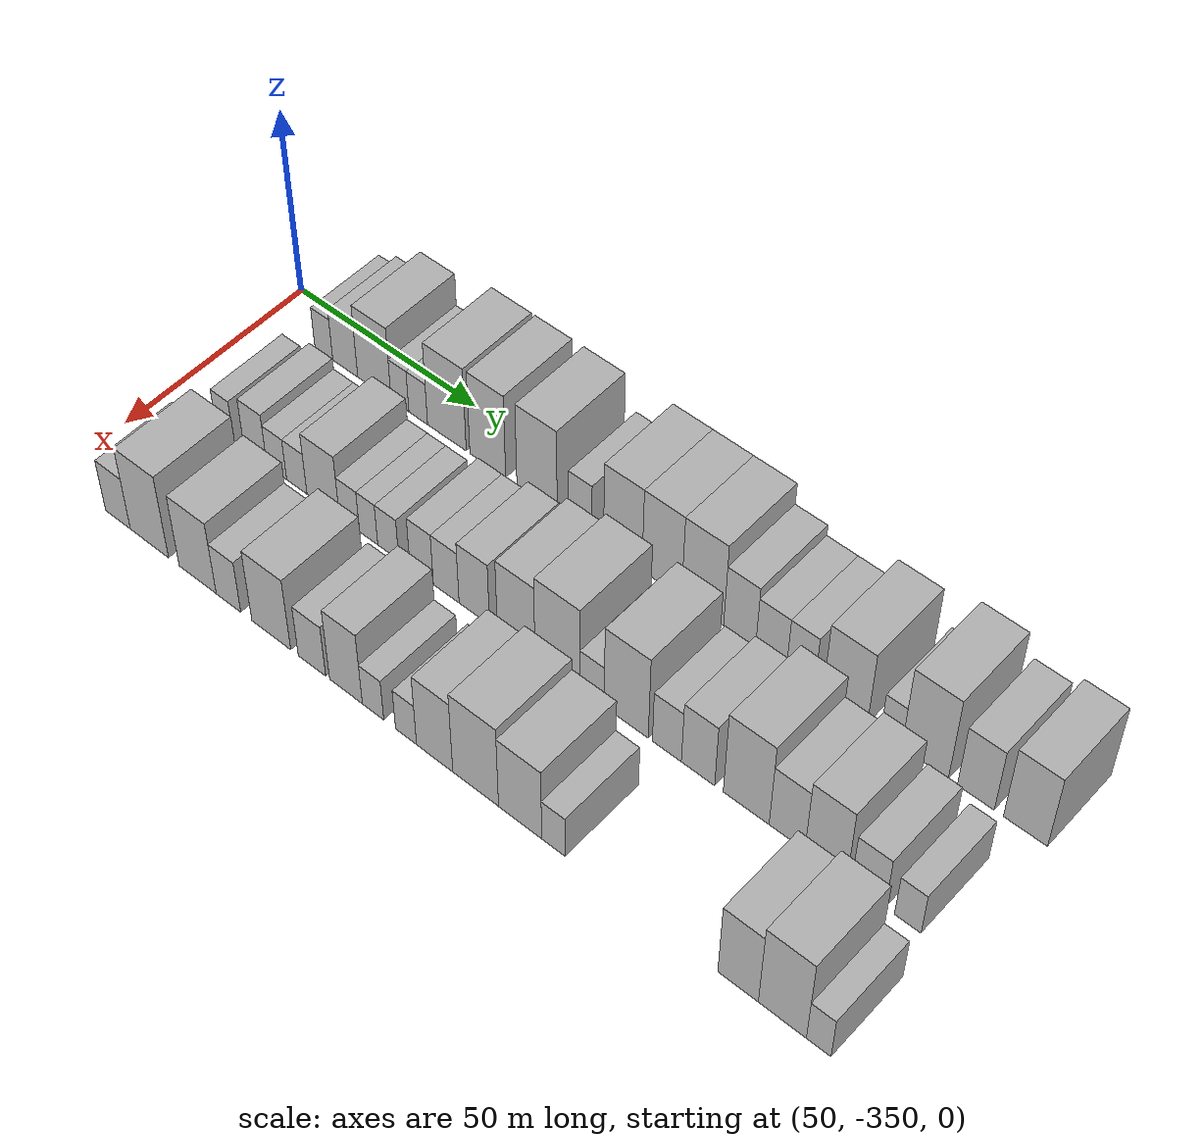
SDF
<sdf version="1.6">
 <world name="default">
  <model name="building_1">
   <static>1</static>
   <pose>50.0000 -333.4136 0 0.000000 0.000000 0.000000</pose>
   <link name="link">
    <pose>0 0 6.00 0 0 0</pose>
    <collision name="collision"><geometry><box><size>20.0000 5.1729 12.0000</size></box></geometry></collision>
    <visual name="visual">
     <cast_shadows>0</cast_shadows>
     <geometry><box><size>20.0000 5.1729 12.0000</size></box></geometry>
     <material>
      <script>
       <uri>model://HANNAS_wall/materials/scripts</uri>
       <uri>model://HANNAS_wall/materials/textures</uri>
       <name>vrc/HANNAS_wall</name>
      </script>
     </material>
    </visual>
   </link>
  </model>
  <model name="building_2">
   <static>1</static>
   <pose>50.0000 -327.2435 0 0.000000 0.000000 0.000000</pose>
   <link name="link">
    <pose>0 0 7.50 0 0 0</pose>
    <collision name="collision"><geometry><box><size>20.0000 7.1673 15.0000</size></box></geometry></collision>
    <visual name="visual">
     <cast_shadows>0</cast_shadows>
     <geometry><box><size>20.0000 7.1673 15.0000</size></box></geometry>
     <material>
      <script>
       <uri>model://HANNAS_wall/materials/scripts</uri>
       <uri>model://HANNAS_wall/materials/textures</uri>
       <name>vrc/HANNAS_wall</name>
      </script>
     </material>
    </visual>
   </link>
  </model>
  <model name="building_3">
   <static>1</static>
   <pose>50.0000 -318.9171 0 0.000000 0.000000 0.000000</pose>
   <link name="link">
    <pose>0 0 10.50 0 0 0</pose>
    <collision name="collision"><geometry><box><size>20.0000 9.4854 21.0000</size></box></geometry></collision>
    <visual name="visual">
     <cast_shadows>0</cast_shadows>
     <geometry><box><size>20.0000 9.4854 21.0000</size></box></geometry>
     <material>
      <script>
       <uri>model://HANNAS_wall/materials/scripts</uri>
       <uri>model://HANNAS_wall/materials/textures</uri>
       <name>vrc/HANNAS_wall</name>
      </script>
     </material>
    </visual>
   </link>
  </model>
  <model name="building_4">
   <static>1</static>
   <pose>50.0000 -311.6888 0 0.000000 0.000000 0.000000</pose>
   <link name="link">
    <pose>0 0 6.00 0 0 0</pose>
    <collision name="collision"><geometry><box><size>20.0000 4.9712 12.0000</size></box></geometry></collision>
    <visual name="visual">
     <cast_shadows>0</cast_shadows>
     <geometry><box><size>20.0000 4.9712 12.0000</size></box></geometry>
     <material>
      <script>
       <uri>model://HANNAS_wall/materials/scripts</uri>
       <uri>model://HANNAS_wall/materials/textures</uri>
       <name>vrc/HANNAS_wall</name>
      </script>
     </material>
    </visual>
   </link>
  </model>
  <model name="building_5">
   <static>1</static>
   <pose>50.0000 -306.6014 0 0.000000 0.000000 0.000000</pose>
   <link name="link">
    <pose>0 0 6.00 0 0 0</pose>
    <collision name="collision"><geometry><box><size>20.0000 5.2036 12.0000</size></box></geometry></collision>
    <visual name="visual">
     <cast_shadows>0</cast_shadows>
     <geometry><box><size>20.0000 5.2036 12.0000</size></box></geometry>
     <material>
      <script>
       <uri>model://HANNAS_wall/materials/scripts</uri>
       <uri>model://HANNAS_wall/materials/textures</uri>
       <name>vrc/HANNAS_wall</name>
      </script>
     </material>
    </visual>
   </link>
  </model>
  <model name="building_6">
   <static>1</static>
   <pose>50.0000 -298.6888 0 0.000000 0.000000 0.000000</pose>
   <link name="link">
    <pose>0 0 12.00 0 0 0</pose>
    <collision name="collision"><geometry><box><size>20.0000 10.6217 24.0000</size></box></geometry></collision>
    <visual name="visual">
     <cast_shadows>0</cast_shadows>
     <geometry><box><size>20.0000 10.6217 24.0000</size></box></geometry>
     <material>
      <script>
       <uri>model://HANNAS_wall/materials/scripts</uri>
       <uri>model://HANNAS_wall/materials/textures</uri>
       <name>vrc/HANNAS_wall</name>
      </script>
     </material>
    </visual>
   </link>
  </model>
  <model name="building_7">
   <static>1</static>
   <pose>50.0000 -287.5518 0 0.000000 0.000000 0.000000</pose>
   <link name="link">
    <pose>0 0 12.00 0 0 0</pose>
    <collision name="collision"><geometry><box><size>20.0000 9.6523 24.0000</size></box></geometry></collision>
    <visual name="visual">
     <cast_shadows>0</cast_shadows>
     <geometry><box><size>20.0000 9.6523 24.0000</size></box></geometry>
     <material>
      <script>
       <uri>model://HANNAS_wall/materials/scripts</uri>
       <uri>model://HANNAS_wall/materials/textures</uri>
       <name>vrc/HANNAS_wall</name>
      </script>
     </material>
    </visual>
   </link>
  </model>
  <model name="building_8">
   <static>1</static>
   <pose>50.0000 -274.4158 0 0.000000 0.000000 0.000000</pose>
   <link name="link">
    <pose>0 0 12.00 0 0 0</pose>
    <collision name="collision"><geometry><box><size>20.0000 10.6198 24.0000</size></box></geometry></collision>
    <visual name="visual">
     <cast_shadows>0</cast_shadows>
     <geometry><box><size>20.0000 10.6198 24.0000</size></box></geometry>
     <material>
      <script>
       <uri>model://HANNAS_wall/materials/scripts</uri>
       <uri>model://HANNAS_wall/materials/textures</uri>
       <name>vrc/HANNAS_wall</name>
      </script>
     </material>
    </visual>
   </link>
  </model>
  <model name="building_9">
   <static>1</static>
   <pose>50.0000 -263.1055 0 0.000000 0.000000 0.000000</pose>
   <link name="link">
    <pose>0 0 7.50 0 0 0</pose>
    <collision name="collision"><geometry><box><size>20.0000 6.0008 15.0000</size></box></geometry></collision>
    <visual name="visual">
     <cast_shadows>0</cast_shadows>
     <geometry><box><size>20.0000 6.0008 15.0000</size></box></geometry>
     <material>
      <script>
       <uri>model://HANNAS_wall/materials/scripts</uri>
       <uri>model://HANNAS_wall/materials/textures</uri>
       <name>vrc/HANNAS_wall</name>
      </script>
     </material>
    </visual>
   </link>
  </model>
  <model name="building_10">
   <static>1</static>
   <pose>50.0000 -252.2052 0 0.000000 0.000000 0.000000</pose>
   <link name="link">
    <pose>0 0 12.00 0 0 0</pose>
    <collision name="collision"><geometry><box><size>20.0000 9.7998 24.0000</size></box></geometry></collision>
    <visual name="visual">
     <cast_shadows>0</cast_shadows>
     <geometry><box><size>20.0000 9.7998 24.0000</size></box></geometry>
     <material>
      <script>
       <uri>model://HANNAS_wall/materials/scripts</uri>
       <uri>model://HANNAS_wall/materials/textures</uri>
       <name>vrc/HANNAS_wall</name>
      </script>
     </material>
    </visual>
   </link>
  </model>
  <model name="building_11">
   <static>1</static>
   <pose>50.0000 -242.3475 0 0.000000 0.000000 0.000000</pose>
   <link name="link">
    <pose>0 0 12.00 0 0 0</pose>
    <collision name="collision"><geometry><box><size>20.0000 9.9154 24.0000</size></box></geometry></collision>
    <visual name="visual">
     <cast_shadows>0</cast_shadows>
     <geometry><box><size>20.0000 9.9154 24.0000</size></box></geometry>
     <material>
      <script>
       <uri>model://HANNAS_wall/materials/scripts</uri>
       <uri>model://HANNAS_wall/materials/textures</uri>
       <name>vrc/HANNAS_wall</name>
      </script>
     </material>
    </visual>
   </link>
  </model>
  <model name="building_12">
   <static>1</static>
   <pose>50.0000 -232.2173 0 0.000000 0.000000 0.000000</pose>
   <link name="link">
    <pose>0 0 12.00 0 0 0</pose>
    <collision name="collision"><geometry><box><size>20.0000 10.3451 24.0000</size></box></geometry></collision>
    <visual name="visual">
     <cast_shadows>0</cast_shadows>
     <geometry><box><size>20.0000 10.3451 24.0000</size></box></geometry>
     <material>
      <script>
       <uri>model://HANNAS_wall/materials/scripts</uri>
       <uri>model://HANNAS_wall/materials/textures</uri>
       <name>vrc/HANNAS_wall</name>
      </script>
     </material>
    </visual>
   </link>
  </model>
  <model name="building_13">
   <static>1</static>
   <pose>50.0000 -223.1650 0 0.000000 0.000000 0.000000</pose>
   <link name="link">
    <pose>0 0 9.00 0 0 0</pose>
    <collision name="collision"><geometry><box><size>20.0000 7.7595 18.0000</size></box></geometry></collision>
    <visual name="visual">
     <cast_shadows>0</cast_shadows>
     <geometry><box><size>20.0000 7.7595 18.0000</size></box></geometry>
     <material>
      <script>
       <uri>model://HANNAS_wall/materials/scripts</uri>
       <uri>model://HANNAS_wall/materials/textures</uri>
       <name>vrc/HANNAS_wall</name>
      </script>
     </material>
    </visual>
   </link>
  </model>
  <model name="building_14">
   <static>1</static>
   <pose>50.0000 -215.5926 0 0.000000 0.000000 0.000000</pose>
   <link name="link">
    <pose>0 0 7.50 0 0 0</pose>
    <collision name="collision"><geometry><box><size>20.0000 7.3854 15.0000</size></box></geometry></collision>
    <visual name="visual">
     <cast_shadows>0</cast_shadows>
     <geometry><box><size>20.0000 7.3854 15.0000</size></box></geometry>
     <material>
      <script>
       <uri>model://HANNAS_wall/materials/scripts</uri>
       <uri>model://HANNAS_wall/materials/textures</uri>
       <name>vrc/HANNAS_wall</name>
      </script>
     </material>
    </visual>
   </link>
  </model>
  <model name="building_15">
   <static>1</static>
   <pose>50.0000 -208.5987 0 0.000000 0.000000 0.000000</pose>
   <link name="link">
    <pose>0 0 7.50 0 0 0</pose>
    <collision name="collision"><geometry><box><size>20.0000 6.6022 15.0000</size></box></geometry></collision>
    <visual name="visual">
     <cast_shadows>0</cast_shadows>
     <geometry><box><size>20.0000 6.6022 15.0000</size></box></geometry>
     <material>
      <script>
       <uri>model://HANNAS_wall/materials/scripts</uri>
       <uri>model://HANNAS_wall/materials/textures</uri>
       <name>vrc/HANNAS_wall</name>
      </script>
     </material>
    </visual>
   </link>
  </model>
  <model name="building_16">
   <static>1</static>
   <pose>50.0000 -198.1302 0 0.000000 0.000000 0.000000</pose>
   <link name="link">
    <pose>0 0 10.50 0 0 0</pose>
    <collision name="collision"><geometry><box><size>20.0000 10.3349 21.0000</size></box></geometry></collision>
    <visual name="visual">
     <cast_shadows>0</cast_shadows>
     <geometry><box><size>20.0000 10.3349 21.0000</size></box></geometry>
     <material>
      <script>
       <uri>model://HANNAS_wall/materials/scripts</uri>
       <uri>model://HANNAS_wall/materials/textures</uri>
       <name>vrc/HANNAS_wall</name>
      </script>
     </material>
    </visual>
   </link>
  </model>
  <model name="building_17">
   <static>1</static>
   <pose>50.0000 -187.5528 0 0.000000 0.000000 0.000000</pose>
   <link name="link">
    <pose>0 0 6.00 0 0 0</pose>
    <collision name="collision"><geometry><box><size>20.0000 4.8197 12.0000</size></box></geometry></collision>
    <visual name="visual">
     <cast_shadows>0</cast_shadows>
     <geometry><box><size>20.0000 4.8197 12.0000</size></box></geometry>
     <material>
      <script>
       <uri>model://HANNAS_wall/materials/scripts</uri>
       <uri>model://HANNAS_wall/materials/textures</uri>
       <name>vrc/HANNAS_wall</name>
      </script>
     </material>
    </visual>
   </link>
  </model>
  <model name="building_18">
   <static>1</static>
   <pose>50.0000 -179.8980 0 0.000000 0.000000 0.000000</pose>
   <link name="link">
    <pose>0 0 12.00 0 0 0</pose>
    <collision name="collision"><geometry><box><size>20.0000 10.4900 24.0000</size></box></geometry></collision>
    <visual name="visual">
     <cast_shadows>0</cast_shadows>
     <geometry><box><size>20.0000 10.4900 24.0000</size></box></geometry>
     <material>
      <script>
       <uri>model://HANNAS_wall/materials/scripts</uri>
       <uri>model://HANNAS_wall/materials/textures</uri>
       <name>vrc/HANNAS_wall</name>
      </script>
     </material>
    </visual>
   </link>
  </model>
  <model name="building_19">
   <static>1</static>
   <pose>50.0000 -168.5905 0 0.000000 0.000000 0.000000</pose>
   <link name="link">
    <pose>0 0 9.00 0 0 0</pose>
    <collision name="collision"><geometry><box><size>20.0000 8.1248 18.0000</size></box></geometry></collision>
    <visual name="visual">
     <cast_shadows>0</cast_shadows>
     <geometry><box><size>20.0000 8.1248 18.0000</size></box></geometry>
     <material>
      <script>
       <uri>model://HANNAS_wall/materials/scripts</uri>
       <uri>model://HANNAS_wall/materials/textures</uri>
       <name>vrc/HANNAS_wall</name>
      </script>
     </material>
    </visual>
   </link>
  </model>
  <model name="building_20">
   <static>1</static>
   <pose>50.0000 -157.7509 0 0.000000 0.000000 0.000000</pose>
   <link name="link">
    <pose>0 0 10.50 0 0 0</pose>
    <collision name="collision"><geometry><box><size>20.0000 9.5544 21.0000</size></box></geometry></collision>
    <visual name="visual">
     <cast_shadows>0</cast_shadows>
     <geometry><box><size>20.0000 9.5544 21.0000</size></box></geometry>
     <material>
      <script>
       <uri>model://HANNAS_wall/materials/scripts</uri>
       <uri>model://HANNAS_wall/materials/textures</uri>
       <name>vrc/HANNAS_wall</name>
      </script>
     </material>
    </visual>
   </link>
  </model>
  <model name="building_82">
   <static>1</static>
   <pose>79.0000 -332.4911 0 0.000000 0.000000 0.000000</pose>
   <link name="link">
    <pose>0 0 6.00 0 0 0</pose>
    <collision name="collision"><geometry><box><size>20.0000 5.0178 12.0000</size></box></geometry></collision>
    <visual name="visual">
     <cast_shadows>0</cast_shadows>
     <geometry><box><size>20.0000 5.0178 12.0000</size></box></geometry>
     <material>
      <script>
       <uri>model://HANNAS_wall/materials/scripts</uri>
       <uri>model://HANNAS_wall/materials/textures</uri>
       <name>vrc/HANNAS_wall</name>
      </script>
     </material>
    </visual>
   </link>
  </model>
  <model name="building_83">
   <static>1</static>
   <pose>79.0000 -323.7530 0 0.000000 0.000000 0.000000</pose>
   <link name="link">
    <pose>0 0 7.50 0 0 0</pose>
    <collision name="collision"><geometry><box><size>20.0000 6.4584 15.0000</size></box></geometry></collision>
    <visual name="visual">
     <cast_shadows>0</cast_shadows>
     <geometry><box><size>20.0000 6.4584 15.0000</size></box></geometry>
     <material>
      <script>
       <uri>model://HANNAS_wall/materials/scripts</uri>
       <uri>model://HANNAS_wall/materials/textures</uri>
       <name>vrc/HANNAS_wall</name>
      </script>
     </material>
    </visual>
   </link>
  </model>
  <model name="building_84">
   <static>1</static>
   <pose>79.0000 -317.7445 0 0.000000 0.000000 0.000000</pose>
   <link name="link">
    <pose>0 0 6.00 0 0 0</pose>
    <collision name="collision"><geometry><box><size>20.0000 5.5586 12.0000</size></box></geometry></collision>
    <visual name="visual">
     <cast_shadows>0</cast_shadows>
     <geometry><box><size>20.0000 5.5586 12.0000</size></box></geometry>
     <material>
      <script>
       <uri>model://HANNAS_wall/materials/scripts</uri>
       <uri>model://HANNAS_wall/materials/textures</uri>
       <name>vrc/HANNAS_wall</name>
      </script>
     </material>
    </visual>
   </link>
  </model>
  <model name="building_85">
   <static>1</static>
   <pose>79.0000 -312.1146 0 0.000000 0.000000 0.000000</pose>
   <link name="link">
    <pose>0 0 6.00 0 0 0</pose>
    <collision name="collision"><geometry><box><size>20.0000 5.7012 12.0000</size></box></geometry></collision>
    <visual name="visual">
     <cast_shadows>0</cast_shadows>
     <geometry><box><size>20.0000 5.7012 12.0000</size></box></geometry>
     <material>
      <script>
       <uri>model://HANNAS_wall/materials/scripts</uri>
       <uri>model://HANNAS_wall/materials/textures</uri>
       <name>vrc/HANNAS_wall</name>
      </script>
     </material>
    </visual>
   </link>
  </model>
  <model name="building_86">
   <static>1</static>
   <pose>79.0000 -304.7775 0 0.000000 0.000000 0.000000</pose>
   <link name="link">
    <pose>0 0 9.00 0 0 0</pose>
    <collision name="collision"><geometry><box><size>20.0000 8.9731 18.0000</size></box></geometry></collision>
    <visual name="visual">
     <cast_shadows>0</cast_shadows>
     <geometry><box><size>20.0000 8.9731 18.0000</size></box></geometry>
     <material>
      <script>
       <uri>model://HANNAS_wall/materials/scripts</uri>
       <uri>model://HANNAS_wall/materials/textures</uri>
       <name>vrc/HANNAS_wall</name>
      </script>
     </material>
    </visual>
   </link>
  </model>
  <model name="building_87">
   <static>1</static>
   <pose>79.0000 -297.5444 0 0.000000 0.000000 0.000000</pose>
   <link name="link">
    <pose>0 0 6.00 0 0 0</pose>
    <collision name="collision"><geometry><box><size>20.0000 5.4931 12.0000</size></box></geometry></collision>
    <visual name="visual">
     <cast_shadows>0</cast_shadows>
     <geometry><box><size>20.0000 5.4931 12.0000</size></box></geometry>
     <material>
      <script>
       <uri>model://HANNAS_wall/materials/scripts</uri>
       <uri>model://HANNAS_wall/materials/textures</uri>
       <name>vrc/HANNAS_wall</name>
      </script>
     </material>
    </visual>
   </link>
  </model>
  <model name="building_88">
   <static>1</static>
   <pose>79.0000 -292.3454 0 0.000000 0.000000 0.000000</pose>
   <link name="link">
    <pose>0 0 6.00 0 0 0</pose>
    <collision name="collision"><geometry><box><size>20.0000 4.9049 12.0000</size></box></geometry></collision>
    <visual name="visual">
     <cast_shadows>0</cast_shadows>
     <geometry><box><size>20.0000 4.9049 12.0000</size></box></geometry>
     <material>
      <script>
       <uri>model://HANNAS_wall/materials/scripts</uri>
       <uri>model://HANNAS_wall/materials/textures</uri>
       <name>vrc/HANNAS_wall</name>
      </script>
     </material>
    </visual>
   </link>
  </model>
  <model name="building_89">
   <static>1</static>
   <pose>79.0000 -287.0665 0 0.000000 0.000000 0.000000</pose>
   <link name="link">
    <pose>0 0 6.00 0 0 0</pose>
    <collision name="collision"><geometry><box><size>20.0000 5.6531 12.0000</size></box></geometry></collision>
    <visual name="visual">
     <cast_shadows>0</cast_shadows>
     <geometry><box><size>20.0000 5.6531 12.0000</size></box></geometry>
     <material>
      <script>
       <uri>model://HANNAS_wall/materials/scripts</uri>
       <uri>model://HANNAS_wall/materials/textures</uri>
       <name>vrc/HANNAS_wall</name>
      </script>
     </material>
    </visual>
   </link>
  </model>
  <model name="building_90">
   <static>1</static>
   <pose>79.0000 -278.1561 0 0.000000 0.000000 0.000000</pose>
   <link name="link">
    <pose>0 0 7.50 0 0 0</pose>
    <collision name="collision"><geometry><box><size>20.0000 6.1675 15.0000</size></box></geometry></collision>
    <visual name="visual">
     <cast_shadows>0</cast_shadows>
     <geometry><box><size>20.0000 6.1675 15.0000</size></box></geometry>
     <material>
      <script>
       <uri>model://HANNAS_wall/materials/scripts</uri>
       <uri>model://HANNAS_wall/materials/textures</uri>
       <name>vrc/HANNAS_wall</name>
      </script>
     </material>
    </visual>
   </link>
  </model>
  <model name="building_91">
   <static>1</static>
   <pose>79.0000 -271.7118 0 0.000000 0.000000 0.000000</pose>
   <link name="link">
    <pose>0 0 7.50 0 0 0</pose>
    <collision name="collision"><geometry><box><size>20.0000 6.7212 15.0000</size></box></geometry></collision>
    <visual name="visual">
     <cast_shadows>0</cast_shadows>
     <geometry><box><size>20.0000 6.7212 15.0000</size></box></geometry>
     <material>
      <script>
       <uri>model://HANNAS_wall/materials/scripts</uri>
       <uri>model://HANNAS_wall/materials/textures</uri>
       <name>vrc/HANNAS_wall</name>
      </script>
     </material>
    </visual>
   </link>
  </model>
  <model name="building_92">
   <static>1</static>
   <pose>79.0000 -264.4161 0 0.000000 0.000000 0.000000</pose>
   <link name="link">
    <pose>0 0 9.00 0 0 0</pose>
    <collision name="collision"><geometry><box><size>20.0000 7.8703 18.0000</size></box></geometry></collision>
    <visual name="visual">
     <cast_shadows>0</cast_shadows>
     <geometry><box><size>20.0000 7.8703 18.0000</size></box></geometry>
     <material>
      <script>
       <uri>model://HANNAS_wall/materials/scripts</uri>
       <uri>model://HANNAS_wall/materials/textures</uri>
       <name>vrc/HANNAS_wall</name>
      </script>
     </material>
    </visual>
   </link>
  </model>
  <model name="building_93">
   <static>1</static>
   <pose>79.0000 -253.7114 0 0.000000 0.000000 0.000000</pose>
   <link name="link">
    <pose>0 0 10.50 0 0 0</pose>
    <collision name="collision"><geometry><box><size>20.0000 9.5390 21.0000</size></box></geometry></collision>
    <visual name="visual">
     <cast_shadows>0</cast_shadows>
     <geometry><box><size>20.0000 9.5390 21.0000</size></box></geometry>
     <material>
      <script>
       <uri>model://HANNAS_wall/materials/scripts</uri>
       <uri>model://HANNAS_wall/materials/textures</uri>
       <name>vrc/HANNAS_wall</name>
      </script>
     </material>
    </visual>
   </link>
  </model>
  <model name="building_94">
   <static>1</static>
   <pose>79.0000 -243.3423 0 0.000000 0.000000 0.000000</pose>
   <link name="link">
    <pose>0 0 12.00 0 0 0</pose>
    <collision name="collision"><geometry><box><size>20.0000 11.1994 24.0000</size></box></geometry></collision>
    <visual name="visual">
     <cast_shadows>0</cast_shadows>
     <geometry><box><size>20.0000 11.1994 24.0000</size></box></geometry>
     <material>
      <script>
       <uri>model://HANNAS_wall/materials/scripts</uri>
       <uri>model://HANNAS_wall/materials/textures</uri>
       <name>vrc/HANNAS_wall</name>
      </script>
     </material>
    </visual>
   </link>
  </model>
  <model name="building_95">
   <static>1</static>
   <pose>79.0000 -234.7925 0 0.000000 0.000000 0.000000</pose>
   <link name="link">
    <pose>0 0 6.00 0 0 0</pose>
    <collision name="collision"><geometry><box><size>20.0000 5.9002 12.0000</size></box></geometry></collision>
    <visual name="visual">
     <cast_shadows>0</cast_shadows>
     <geometry><box><size>20.0000 5.9002 12.0000</size></box></geometry>
     <material>
      <script>
       <uri>model://HANNAS_wall/materials/scripts</uri>
       <uri>model://HANNAS_wall/materials/textures</uri>
       <name>vrc/HANNAS_wall</name>
      </script>
     </material>
    </visual>
   </link>
  </model>
  <model name="building_96">
   <static>1</static>
   <pose>79.0000 -226.5008 0 0.000000 0.000000 0.000000</pose>
   <link name="link">
    <pose>0 0 12.00 0 0 0</pose>
    <collision name="collision"><geometry><box><size>20.0000 10.6832 24.0000</size></box></geometry></collision>
    <visual name="visual">
     <cast_shadows>0</cast_shadows>
     <geometry><box><size>20.0000 10.6832 24.0000</size></box></geometry>
     <material>
      <script>
       <uri>model://HANNAS_wall/materials/scripts</uri>
       <uri>model://HANNAS_wall/materials/textures</uri>
       <name>vrc/HANNAS_wall</name>
      </script>
     </material>
    </visual>
   </link>
  </model>
  <model name="building_97">
   <static>1</static>
   <pose>79.0000 -216.7145 0 0.000000 0.000000 0.000000</pose>
   <link name="link">
    <pose>0 0 7.50 0 0 0</pose>
    <collision name="collision"><geometry><box><size>20.0000 6.8894 15.0000</size></box></geometry></collision>
    <visual name="visual">
     <cast_shadows>0</cast_shadows>
     <geometry><box><size>20.0000 6.8894 15.0000</size></box></geometry>
     <material>
      <script>
       <uri>model://HANNAS_wall/materials/scripts</uri>
       <uri>model://HANNAS_wall/materials/textures</uri>
       <name>vrc/HANNAS_wall</name>
      </script>
     </material>
    </visual>
   </link>
  </model>
  <model name="building_98">
   <static>1</static>
   <pose>79.0000 -209.3616 0 0.000000 0.000000 0.000000</pose>
   <link name="link">
    <pose>0 0 9.00 0 0 0</pose>
    <collision name="collision"><geometry><box><size>20.0000 7.8166 18.0000</size></box></geometry></collision>
    <visual name="visual">
     <cast_shadows>0</cast_shadows>
     <geometry><box><size>20.0000 7.8166 18.0000</size></box></geometry>
     <material>
      <script>
       <uri>model://HANNAS_wall/materials/scripts</uri>
       <uri>model://HANNAS_wall/materials/textures</uri>
       <name>vrc/HANNAS_wall</name>
      </script>
     </material>
    </visual>
   </link>
  </model>
  <model name="building_99">
   <static>1</static>
   <pose>79.0000 -198.1830 0 0.000000 0.000000 0.000000</pose>
   <link name="link">
    <pose>0 0 12.00 0 0 0</pose>
    <collision name="collision"><geometry><box><size>20.0000 10.5406 24.0000</size></box></geometry></collision>
    <visual name="visual">
     <cast_shadows>0</cast_shadows>
     <geometry><box><size>20.0000 10.5406 24.0000</size></box></geometry>
     <material>
      <script>
       <uri>model://HANNAS_wall/materials/scripts</uri>
       <uri>model://HANNAS_wall/materials/textures</uri>
       <name>vrc/HANNAS_wall</name>
      </script>
     </material>
    </visual>
   </link>
  </model>
  <model name="building_100">
   <static>1</static>
   <pose>79.0000 -188.8706 0 0.000000 0.000000 0.000000</pose>
   <link name="link">
    <pose>0 0 9.00 0 0 0</pose>
    <collision name="collision"><geometry><box><size>20.0000 8.0841 18.0000</size></box></geometry></collision>
    <visual name="visual">
     <cast_shadows>0</cast_shadows>
     <geometry><box><size>20.0000 8.0841 18.0000</size></box></geometry>
     <material>
      <script>
       <uri>model://HANNAS_wall/materials/scripts</uri>
       <uri>model://HANNAS_wall/materials/textures</uri>
       <name>vrc/HANNAS_wall</name>
      </script>
     </material>
    </visual>
   </link>
  </model>
  <model name="building_101">
   <static>1</static>
   <pose>79.0000 -180.1511 0 0.000000 0.000000 0.000000</pose>
   <link name="link">
    <pose>0 0 10.50 0 0 0</pose>
    <collision name="collision"><geometry><box><size>20.0000 9.3549 21.0000</size></box></geometry></collision>
    <visual name="visual">
     <cast_shadows>0</cast_shadows>
     <geometry><box><size>20.0000 9.3549 21.0000</size></box></geometry>
     <material>
      <script>
       <uri>model://HANNAS_wall/materials/scripts</uri>
       <uri>model://HANNAS_wall/materials/textures</uri>
       <name>vrc/HANNAS_wall</name>
      </script>
     </material>
    </visual>
   </link>
  </model>
  <model name="building_102">
   <static>1</static>
   <pose>79.0000 -170.7710 0 0.000000 0.000000 0.000000</pose>
   <link name="link">
    <pose>0 0 7.50 0 0 0</pose>
    <collision name="collision"><geometry><box><size>20.0000 7.4053 15.0000</size></box></geometry></collision>
    <visual name="visual">
     <cast_shadows>0</cast_shadows>
     <geometry><box><size>20.0000 7.4053 15.0000</size></box></geometry>
     <material>
      <script>
       <uri>model://HANNAS_wall/materials/scripts</uri>
       <uri>model://HANNAS_wall/materials/textures</uri>
       <name>vrc/HANNAS_wall</name>
      </script>
     </material>
    </visual>
   </link>
  </model>
  <model name="building_103">
   <static>1</static>
   <pose>79.0000 -162.2058 0 0.000000 0.000000 0.000000</pose>
   <link name="link">
    <pose>0 0 6.00 0 0 0</pose>
    <collision name="collision"><geometry><box><size>20.0000 5.7250 12.0000</size></box></geometry></collision>
    <visual name="visual">
     <cast_shadows>0</cast_shadows>
     <geometry><box><size>20.0000 5.7250 12.0000</size></box></geometry>
     <material>
      <script>
       <uri>model://HANNAS_wall/materials/scripts</uri>
       <uri>model://HANNAS_wall/materials/textures</uri>
       <name>vrc/HANNAS_wall</name>
      </script>
     </material>
    </visual>
   </link>
  </model>
  <model name="building_158">
   <static>1</static>
   <pose>108.0000 -332.4331 0 0.000000 0.000000 0.000000</pose>
   <link name="link">
    <pose>0 0 7.50 0 0 0</pose>
    <collision name="collision"><geometry><box><size>20.0000 7.1338 15.0000</size></box></geometry></collision>
    <visual name="visual">
     <cast_shadows>0</cast_shadows>
     <geometry><box><size>20.0000 7.1338 15.0000</size></box></geometry>
     <material>
      <script>
       <uri>model://HANNAS_wall/materials/scripts</uri>
       <uri>model://HANNAS_wall/materials/textures</uri>
       <name>vrc/HANNAS_wall</name>
      </script>
     </material>
    </visual>
   </link>
  </model>
  <model name="building_159">
   <static>1</static>
   <pose>108.0000 -323.4327 0 0.000000 0.000000 0.000000</pose>
   <link name="link">
    <pose>0 0 12.00 0 0 0</pose>
    <collision name="collision"><geometry><box><size>20.0000 10.8670 24.0000</size></box></geometry></collision>
    <visual name="visual">
     <cast_shadows>0</cast_shadows>
     <geometry><box><size>20.0000 10.8670 24.0000</size></box></geometry>
     <material>
      <script>
       <uri>model://HANNAS_wall/materials/scripts</uri>
       <uri>model://HANNAS_wall/materials/textures</uri>
       <name>vrc/HANNAS_wall</name>
      </script>
     </material>
    </visual>
   </link>
  </model>
  <model name="building_160">
   <static>1</static>
   <pose>108.0000 -309.8531 0 0.000000 0.000000 0.000000</pose>
   <link name="link">
    <pose>0 0 10.50 0 0 0</pose>
    <collision name="collision"><geometry><box><size>20.0000 10.2921 21.0000</size></box></geometry></collision>
    <visual name="visual">
     <cast_shadows>0</cast_shadows>
     <geometry><box><size>20.0000 10.2921 21.0000</size></box></geometry>
     <material>
      <script>
       <uri>model://HANNAS_wall/materials/scripts</uri>
       <uri>model://HANNAS_wall/materials/textures</uri>
       <name>vrc/HANNAS_wall</name>
      </script>
     </material>
    </visual>
   </link>
  </model>
  <model name="building_161">
   <static>1</static>
   <pose>108.0000 -301.3444 0 0.000000 0.000000 0.000000</pose>
   <link name="link">
    <pose>0 0 7.50 0 0 0</pose>
    <collision name="collision"><geometry><box><size>20.0000 6.7253 15.0000</size></box></geometry></collision>
    <visual name="visual">
     <cast_shadows>0</cast_shadows>
     <geometry><box><size>20.0000 6.7253 15.0000</size></box></geometry>
     <material>
      <script>
       <uri>model://HANNAS_wall/materials/scripts</uri>
       <uri>model://HANNAS_wall/materials/textures</uri>
       <name>vrc/HANNAS_wall</name>
      </script>
     </material>
    </visual>
   </link>
  </model>
  <model name="building_162">
   <static>1</static>
   <pose>108.0000 -289.7538 0 0.000000 0.000000 0.000000</pose>
   <link name="link">
    <pose>0 0 10.50 0 0 0</pose>
    <collision name="collision"><geometry><box><size>20.0000 10.4559 21.0000</size></box></geometry></collision>
    <visual name="visual">
     <cast_shadows>0</cast_shadows>
     <geometry><box><size>20.0000 10.4559 21.0000</size></box></geometry>
     <material>
      <script>
       <uri>model://HANNAS_wall/materials/scripts</uri>
       <uri>model://HANNAS_wall/materials/textures</uri>
       <name>vrc/HANNAS_wall</name>
      </script>
     </material>
    </visual>
   </link>
  </model>
  <model name="building_163">
   <static>1</static>
   <pose>108.0000 -278.9067 0 0.000000 0.000000 0.000000</pose>
   <link name="link">
    <pose>0 0 7.50 0 0 0</pose>
    <collision name="collision"><geometry><box><size>20.0000 7.2384 15.0000</size></box></geometry></collision>
    <visual name="visual">
     <cast_shadows>0</cast_shadows>
     <geometry><box><size>20.0000 7.2384 15.0000</size></box></geometry>
     <material>
      <script>
       <uri>model://HANNAS_wall/materials/scripts</uri>
       <uri>model://HANNAS_wall/materials/textures</uri>
       <name>vrc/HANNAS_wall</name>
      </script>
     </material>
    </visual>
   </link>
  </model>
  <model name="building_164">
   <static>1</static>
   <pose>108.0000 -270.0245 0 0.000000 0.000000 0.000000</pose>
   <link name="link">
    <pose>0 0 10.50 0 0 0</pose>
    <collision name="collision"><geometry><box><size>20.0000 8.5259 21.0000</size></box></geometry></collision>
    <visual name="visual">
     <cast_shadows>0</cast_shadows>
     <geometry><box><size>20.0000 8.5259 21.0000</size></box></geometry>
     <material>
      <script>
       <uri>model://HANNAS_wall/materials/scripts</uri>
       <uri>model://HANNAS_wall/materials/textures</uri>
       <name>vrc/HANNAS_wall</name>
      </script>
     </material>
    </visual>
   </link>
  </model>
  <model name="building_165">
   <static>1</static>
   <pose>108.0000 -263.0259 0 0.000000 0.000000 0.000000</pose>
   <link name="link">
    <pose>0 0 6.00 0 0 0</pose>
    <collision name="collision"><geometry><box><size>20.0000 5.4715 12.0000</size></box></geometry></collision>
    <visual name="visual">
     <cast_shadows>0</cast_shadows>
     <geometry><box><size>20.0000 5.4715 12.0000</size></box></geometry>
     <material>
      <script>
       <uri>model://HANNAS_wall/materials/scripts</uri>
       <uri>model://HANNAS_wall/materials/textures</uri>
       <name>vrc/HANNAS_wall</name>
      </script>
     </material>
    </visual>
   </link>
  </model>
  <model name="building_166">
   <static>1</static>
   <pose>108.0000 -254.6337 0 0.000000 0.000000 0.000000</pose>
   <link name="link">
    <pose>0 0 6.00 0 0 0</pose>
    <collision name="collision"><geometry><box><size>20.0000 5.3129 12.0000</size></box></geometry></collision>
    <visual name="visual">
     <cast_shadows>0</cast_shadows>
     <geometry><box><size>20.0000 5.3129 12.0000</size></box></geometry>
     <material>
      <script>
       <uri>model://HANNAS_wall/materials/scripts</uri>
       <uri>model://HANNAS_wall/materials/textures</uri>
       <name>vrc/HANNAS_wall</name>
      </script>
     </material>
    </visual>
   </link>
  </model>
  <model name="building_167">
   <static>1</static>
   <pose>108.0000 -247.4605 0 0.000000 0.000000 0.000000</pose>
   <link name="link">
    <pose>0 0 10.50 0 0 0</pose>
    <collision name="collision"><geometry><box><size>20.0000 9.0337 21.0000</size></box></geometry></collision>
    <visual name="visual">
     <cast_shadows>0</cast_shadows>
     <geometry><box><size>20.0000 9.0337 21.0000</size></box></geometry>
     <material>
      <script>
       <uri>model://HANNAS_wall/materials/scripts</uri>
       <uri>model://HANNAS_wall/materials/textures</uri>
       <name>vrc/HANNAS_wall</name>
      </script>
     </material>
    </visual>
   </link>
  </model>
  <model name="building_168">
   <static>1</static>
   <pose>108.0000 -237.3411 0 0.000000 0.000000 0.000000</pose>
   <link name="link">
    <pose>0 0 12.00 0 0 0</pose>
    <collision name="collision"><geometry><box><size>20.0000 11.2049 24.0000</size></box></geometry></collision>
    <visual name="visual">
     <cast_shadows>0</cast_shadows>
     <geometry><box><size>20.0000 11.2049 24.0000</size></box></geometry>
     <material>
      <script>
       <uri>model://HANNAS_wall/materials/scripts</uri>
       <uri>model://HANNAS_wall/materials/textures</uri>
       <name>vrc/HANNAS_wall</name>
      </script>
     </material>
    </visual>
   </link>
  </model>
  <model name="building_169">
   <static>1</static>
   <pose>108.0000 -226.5468 0 0.000000 0.000000 0.000000</pose>
   <link name="link">
    <pose>0 0 10.50 0 0 0</pose>
    <collision name="collision"><geometry><box><size>20.0000 10.3838 21.0000</size></box></geometry></collision>
    <visual name="visual">
     <cast_shadows>0</cast_shadows>
     <geometry><box><size>20.0000 10.3838 21.0000</size></box></geometry>
     <material>
      <script>
       <uri>model://HANNAS_wall/materials/scripts</uri>
       <uri>model://HANNAS_wall/materials/textures</uri>
       <name>vrc/HANNAS_wall</name>
      </script>
     </material>
    </visual>
   </link>
  </model>
  <model name="building_170">
   <static>1</static>
   <pose>108.0000 -218.5901 0 0.000000 0.000000 0.000000</pose>
   <link name="link">
    <pose>0 0 6.00 0 0 0</pose>
    <collision name="collision"><geometry><box><size>20.0000 5.5294 12.0000</size></box></geometry></collision>
    <visual name="visual">
     <cast_shadows>0</cast_shadows>
     <geometry><box><size>20.0000 5.5294 12.0000</size></box></geometry>
     <material>
      <script>
       <uri>model://HANNAS_wall/materials/scripts</uri>
       <uri>model://HANNAS_wall/materials/textures</uri>
       <name>vrc/HANNAS_wall</name>
      </script>
     </material>
    </visual>
   </link>
  </model>
  <model name="building_171">
   <static>1</static>
   <pose>108.0000 -176.5443 0 0.000000 0.000000 0.000000</pose>
   <link name="link">
    <pose>0 0 10.50 0 0 0</pose>
    <collision name="collision"><geometry><box><size>20.0000 8.8541 21.0000</size></box></geometry></collision>
    <visual name="visual">
     <cast_shadows>0</cast_shadows>
     <geometry><box><size>20.0000 8.8541 21.0000</size></box></geometry>
     <material>
      <script>
       <uri>model://HANNAS_wall/materials/scripts</uri>
       <uri>model://HANNAS_wall/materials/textures</uri>
       <name>vrc/HANNAS_wall</name>
      </script>
     </material>
    </visual>
   </link>
  </model>
  <model name="building_172">
   <static>1</static>
   <pose>108.0000 -166.9515 0 0.000000 0.000000 0.000000</pose>
   <link name="link">
    <pose>0 0 12.00 0 0 0</pose>
    <collision name="collision"><geometry><box><size>20.0000 10.3315 24.0000</size></box></geometry></collision>
    <visual name="visual">
     <cast_shadows>0</cast_shadows>
     <geometry><box><size>20.0000 10.3315 24.0000</size></box></geometry>
     <material>
      <script>
       <uri>model://HANNAS_wall/materials/scripts</uri>
       <uri>model://HANNAS_wall/materials/textures</uri>
       <name>vrc/HANNAS_wall</name>
      </script>
     </material>
    </visual>
   </link>
  </model>
  <model name="building_173">
   <static>1</static>
   <pose>108.0000 -159.1743 0 0.000000 0.000000 0.000000</pose>
   <link name="link">
    <pose>0 0 6.00 0 0 0</pose>
    <collision name="collision"><geometry><box><size>20.0000 5.2230 12.0000</size></box></geometry></collision>
    <visual name="visual">
     <cast_shadows>0</cast_shadows>
     <geometry><box><size>20.0000 5.2230 12.0000</size></box></geometry>
     <material>
      <script>
       <uri>model://HANNAS_wall/materials/scripts</uri>
       <uri>model://HANNAS_wall/materials/textures</uri>
       <name>vrc/HANNAS_wall</name>
      </script>
     </material>
    </visual>
   </link>
  </model>
 </world>
</sdf>
